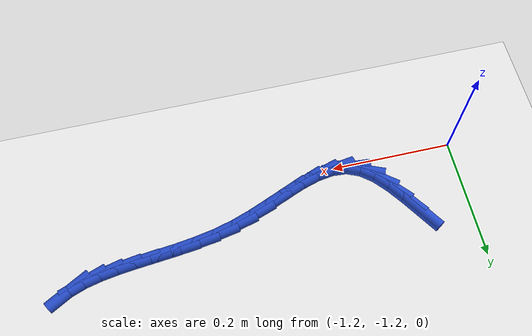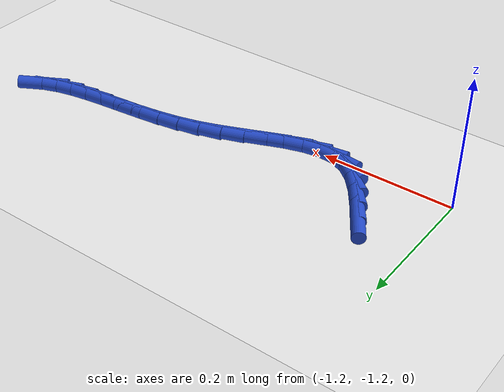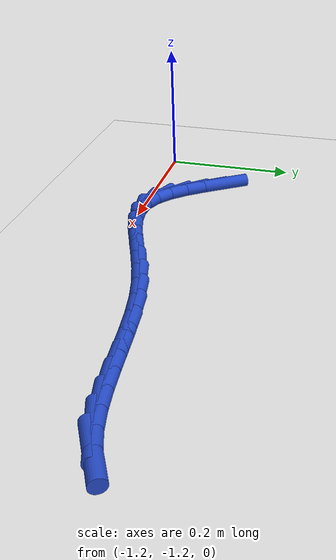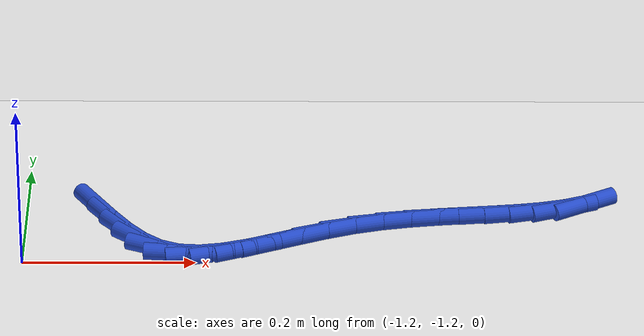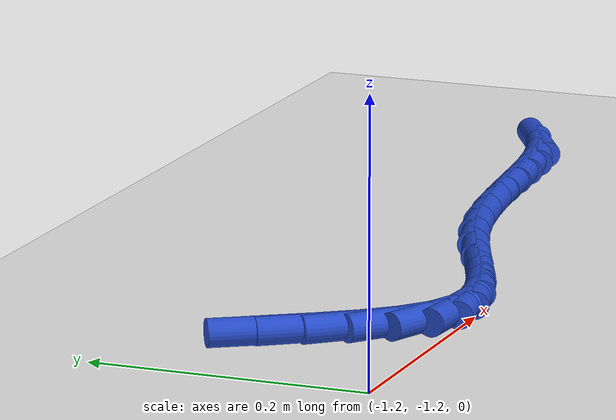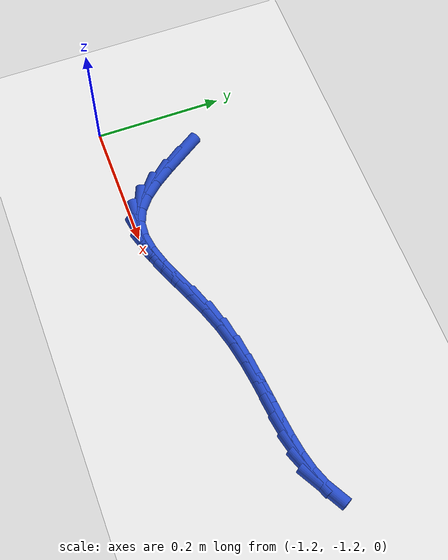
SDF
<sdf version="1.6">
 <world name="default">
  <model name="ground_plane">
   <static>1</static>
   <link name="link">
    <collision name="collision">
     <geometry><plane><normal>0 0 1</normal><size>100 100</size></plane></geometry>
     <surface><friction><ode><mu>100</mu><mu2>50</mu2></ode></friction></surface>
    </collision>
    <visual name="visual">
     <cast_shadows>0</cast_shadows>
     <geometry><plane><normal>0 0 1</normal><size>100 100</size></plane></geometry>
     <material>
      <script><uri>file://media/materials/scripts/gazebo.material</uri><name>Gazebo/WhiteGlow</name></script>
     </material>
    </visual>
   </link>
  </model>
  <model name="line">
   <link name="link_196">
    <pose>-1.1168663358906874 -1.0927069684987423 0.01 0 1.57 -0.998060868240793</pose>
    <collision name="collision">
     <geometry><cylinder><radius>0.01</radius><length>0.08</length></cylinder></geometry>
    </collision>
    <visual name="visual">
     <material>
      <script><name>Gazebo/Blue</name><uri>file://media/materials/scripts/gazebo.material</uri></script>
     </material>
     <geometry><cylinder><radius>0.01</radius><length>0.08</length></cylinder></geometry>
    </visual>
   </link>
   <link name="link_197">
    <pose>-1.0991991807547272 -1.1201049309307898 0.01 0 1.57 -0.9547648093887151</pose>
    <collision name="collision">
     <geometry><cylinder><radius>0.01</radius><length>0.08</length></cylinder></geometry>
    </collision>
    <visual name="visual">
     <material>
      <script><name>Gazebo/Blue</name><uri>file://media/materials/scripts/gazebo.material</uri></script>
     </material>
     <geometry><cylinder><radius>0.01</radius><length>0.08</length></cylinder></geometry>
    </visual>
   </link>
   <link name="link_198">
    <pose>-1.081210381497267 -1.1455151788995286 0.01 0 1.57 -0.8557710970767453</pose>
    <collision name="collision">
     <geometry><cylinder><radius>0.01</radius><length>0.08</length></cylinder></geometry>
    </collision>
    <visual name="visual">
     <material>
      <script><name>Gazebo/Blue</name><uri>file://media/materials/scripts/gazebo.material</uri></script>
     </material>
     <geometry><cylinder><radius>0.01</radius><length>0.08</length></cylinder></geometry>
    </visual>
   </link>
   <link name="link_199">
    <pose>-1.0623550608238168 -1.167230281735876 0.01 0 1.57 -0.6777169606454609</pose>
    <collision name="collision">
     <geometry><cylinder><radius>0.01</radius><length>0.08</length></cylinder></geometry>
    </collision>
    <visual name="visual">
     <material>
      <script><name>Gazebo/Blue</name><uri>file://media/materials/scripts/gazebo.material</uri></script>
     </material>
     <geometry><cylinder><radius>0.01</radius><length>0.08</length></cylinder></geometry>
    </visual>
   </link>
   <link name="link_200">
    <pose>-1.042088341439888 -1.1835428087707462 0.01 0 1.57 -0.39436410489119056</pose>
    <collision name="collision">
     <geometry><cylinder><radius>0.01</radius><length>0.08</length></cylinder></geometry>
    </collision>
    <visual name="visual">
     <material>
      <script><name>Gazebo/Blue</name><uri>file://media/materials/scripts/gazebo.material</uri></script>
     </material>
     <geometry><cylinder><radius>0.01</radius><length>0.08</length></cylinder></geometry>
    </visual>
   </link>
   <link name="link_201">
    <pose>-1.0198755961027912 -1.1927869894051522 0.01 0 1.57 -0.07779992914436429</pose>
    <collision name="collision">
     <geometry><cylinder><radius>0.01</radius><length>0.08</length></cylinder></geometry>
    </collision>
    <visual name="visual">
     <material>
      <script><name>Gazebo/Blue</name><uri>file://media/materials/scripts/gazebo.material</uri></script>
     </material>
     <geometry><cylinder><radius>0.01</radius><length>0.08</length></cylinder></geometry>
    </visual>
   </link>
   <link name="link_202">
    <pose>-0.9955237843683777 -1.194685390411306 0.01 0 1.57 0.15276416110874352</pose>
    <collision name="collision">
     <geometry><cylinder><radius>0.01</radius><length>0.08</length></cylinder></geometry>
    </collision>
    <visual name="visual">
     <material>
      <script><name>Gazebo/Blue</name><uri>file://media/materials/scripts/gazebo.material</uri></script>
     </material>
     <geometry><cylinder><radius>0.01</radius><length>0.08</length></cylinder></geometry>
    </visual>
   </link>
   <link name="link_203">
    <pose>-0.9692532382183616 -1.1906406797524063 0.01 0 1.57 0.29477667477634967</pose>
    <collision name="collision">
     <geometry><cylinder><radius>0.01</radius><length>0.08</length></cylinder></geometry>
    </collision>
    <visual name="visual">
     <material>
      <script><name>Gazebo/Blue</name><uri>file://media/materials/scripts/gazebo.material</uri></script>
     </material>
     <geometry><cylinder><radius>0.01</radius><length>0.08</length></cylinder></geometry>
    </visual>
   </link>
   <link name="link_204">
    <pose>-0.9413090607634567 -1.1821562045872855 0.01 0 1.57 0.37083727739226174</pose>
    <collision name="collision">
     <geometry><cylinder><radius>0.01</radius><length>0.08</length></cylinder></geometry>
    </collision>
    <visual name="visual">
     <material>
      <script><name>Gazebo/Blue</name><uri>file://media/materials/scripts/gazebo.material</uri></script>
     </material>
     <geometry><cylinder><radius>0.01</radius><length>0.08</length></cylinder></geometry>
    </visual>
   </link>
   <link name="link_205">
    <pose>-0.9119363551143775 -1.1707353120747757 0.01 0 1.57 0.39819503108324267</pose>
    <collision name="collision">
     <geometry><cylinder><radius>0.01</radius><length>0.08</length></cylinder></geometry>
    </collision>
    <visual name="visual">
     <material>
      <script><name>Gazebo/Blue</name><uri>file://media/materials/scripts/gazebo.material</uri></script>
     </material>
     <geometry><cylinder><radius>0.01</radius><length>0.08</length></cylinder></geometry>
    </visual>
   </link>
   <link name="link_206">
    <pose>-0.8813802243818375 -1.157881349373709 0.01 0 1.57 0.3855845955711853</pose>
    <collision name="collision">
     <geometry><cylinder><radius>0.01</radius><length>0.08</length></cylinder></geometry>
    </collision>
    <visual name="visual">
     <material>
      <script><name>Gazebo/Blue</name><uri>file://media/materials/scripts/gazebo.material</uri></script>
     </material>
     <geometry><cylinder><radius>0.01</radius><length>0.08</length></cylinder></geometry>
    </visual>
   </link>
   <link name="link_207">
    <pose>-0.84988577167655 -1.1450976636429178 0.01 0 1.57 0.33513448249755623</pose>
    <collision name="collision">
     <geometry><cylinder><radius>0.01</radius><length>0.08</length></cylinder></geometry>
    </collision>
    <visual name="visual">
     <material>
      <script><name>Gazebo/Blue</name><uri>file://media/materials/scripts/gazebo.material</uri></script>
     </material>
     <geometry><cylinder><radius>0.01</radius><length>0.08</length></cylinder></geometry>
    </visual>
   </link>
   <link name="link_208">
    <pose>-0.8176981001092293 -1.1338876020412338 0.01 0 1.57 0.25456346189366824</pose>
    <collision name="collision">
     <geometry><cylinder><radius>0.01</radius><length>0.08</length></cylinder></geometry>
    </collision>
    <visual name="visual">
     <material>
      <script><name>Gazebo/Blue</name><uri>file://media/materials/scripts/gazebo.material</uri></script>
     </material>
     <geometry><cylinder><radius>0.01</radius><length>0.08</length></cylinder></geometry>
    </visual>
   </link>
   <link name="link_209">
    <pose>-0.7850779378229759 -1.1253995545239082 0.01 0 1.57 0.18376494030884055</pose>
    <collision name="collision">
     <geometry><cylinder><radius>0.01</radius><length>0.08</length></cylinder></geometry>
    </collision>
    <visual name="visual">
     <material>
      <script><name>Gazebo/Blue</name><uri>file://media/materials/scripts/gazebo.material</uri></script>
     </material>
     <geometry><cylinder><radius>0.01</radius><length>0.08</length></cylinder></geometry>
    </visual>
   </link>
   <link name="link_210">
    <pose>-0.7523505075054451 -1.1193167746795138 0.01 0 1.57 0.133756350062288</pose>
    <collision name="collision">
     <geometry><cylinder><radius>0.01</radius><length>0.08</length></cylinder></geometry>
    </collision>
    <visual name="visual">
     <material>
      <script><name>Gazebo/Blue</name><uri>file://media/materials/scripts/gazebo.material</uri></script>
     </material>
     <geometry><cylinder><radius>0.01</radius><length>0.08</length></cylinder></geometry>
    </visual>
   </link>
   <link name="link_211">
    <pose>-0.7198576698923809 -1.1149445459986398 0.01 0 1.57 0.10477700168272003</pose>
    <collision name="collision">
     <geometry><cylinder><radius>0.01</radius><length>0.08</length></cylinder></geometry>
    </collision>
    <visual name="visual">
     <material>
      <script><name>Gazebo/Blue</name><uri>file://media/materials/scripts/gazebo.material</uri></script>
     </material>
     <geometry><cylinder><radius>0.01</radius><length>0.08</length></cylinder></geometry>
    </visual>
   </link>
   <link name="link_212">
    <pose>-0.6879412857380357 -1.1115881515514088 0.01 0 1.57 0.09760710406901614</pose>
    <collision name="collision">
     <geometry><cylinder><radius>0.01</radius><length>0.08</length></cylinder></geometry>
    </collision>
    <visual name="visual">
     <material>
      <script><name>Gazebo/Blue</name><uri>file://media/materials/scripts/gazebo.material</uri></script>
     </material>
     <geometry><cylinder><radius>0.01</radius><length>0.08</length></cylinder></geometry>
    </visual>
   </link>
   <link name="link_213">
    <pose>-0.656943215796661 -1.108552874407946 0.01 0 1.57 0.11413256667266342</pose>
    <collision name="collision">
     <geometry><cylinder><radius>0.01</radius><length>0.08</length></cylinder></geometry>
    </collision>
    <visual name="visual">
     <material>
      <script><name>Gazebo/Blue</name><uri>file://media/materials/scripts/gazebo.material</uri></script>
     </material>
     <geometry><cylinder><radius>0.01</radius><length>0.08</length></cylinder></geometry>
    </visual>
   </link>
   <link name="link_214">
    <pose>-0.627205320822511 -1.1051439976383743 0.01 0 1.57 0.15780457696007705</pose>
    <collision name="collision">
     <geometry><cylinder><radius>0.01</radius><length>0.08</length></cylinder></geometry>
    </collision>
    <visual name="visual">
     <material>
      <script><name>Gazebo/Blue</name><uri>file://media/materials/scripts/gazebo.material</uri></script>
     </material>
     <geometry><cylinder><radius>0.01</radius><length>0.08</length></cylinder></geometry>
    </visual>
   </link>
   <link name="link_215">
    <pose>-0.5990694615698369 -1.100666804312818 0.01 0 1.57 0.23388933438924464</pose>
    <collision name="collision">
     <geometry><cylinder><radius>0.01</radius><length>0.08</length></cylinder></geometry>
    </collision>
    <visual name="visual">
     <material>
      <script><name>Gazebo/Blue</name><uri>file://media/materials/scripts/gazebo.material</uri></script>
     </material>
     <geometry><cylinder><radius>0.01</radius><length>0.08</length></cylinder></geometry>
    </visual>
   </link>
   <link name="link_216">
    <pose>-0.572877498792891 -1.0944265775014004 0.01 0 1.57 0.3489487550618458</pose>
    <collision name="collision">
     <geometry><cylinder><radius>0.01</radius><length>0.08</length></cylinder></geometry>
    </collision>
    <visual name="visual">
     <material>
      <script><name>Gazebo/Blue</name><uri>file://media/materials/scripts/gazebo.material</uri></script>
     </material>
     <geometry><cylinder><radius>0.01</radius><length>0.08</length></cylinder></geometry>
    </visual>
   </link>
   <link name="link_217">
    <pose>-0.5489712932459262 -1.0857286002742466 0.01 0 1.57 0.5081395945027953</pose>
    <collision name="collision">
     <geometry><cylinder><radius>0.01</radius><length>0.08</length></cylinder></geometry>
    </collision>
    <visual name="visual">
     <material>
      <script><name>Gazebo/Blue</name><uri>file://media/materials/scripts/gazebo.material</uri></script>
     </material>
     <geometry><cylinder><radius>0.01</radius><length>0.08</length></cylinder></geometry>
    </visual>
   </link>
  </model>
 </world>
</sdf>
